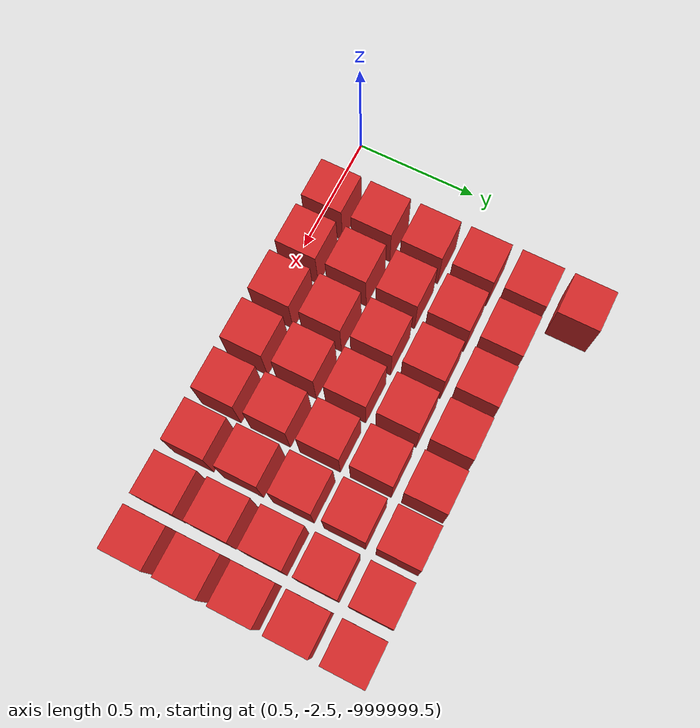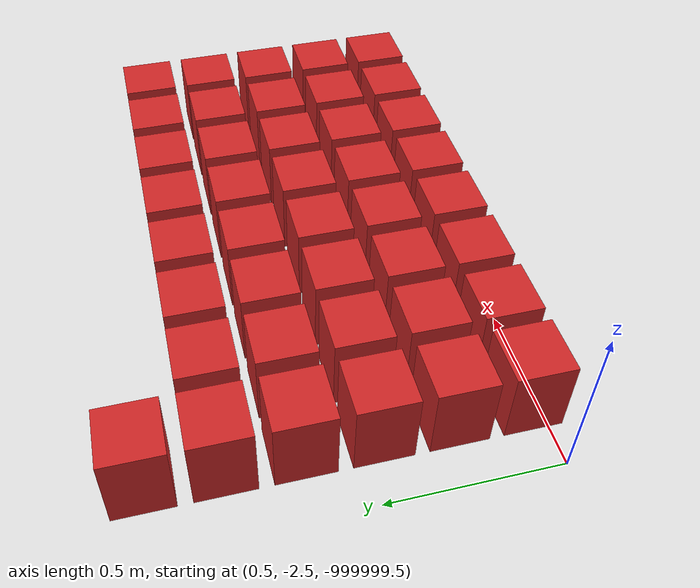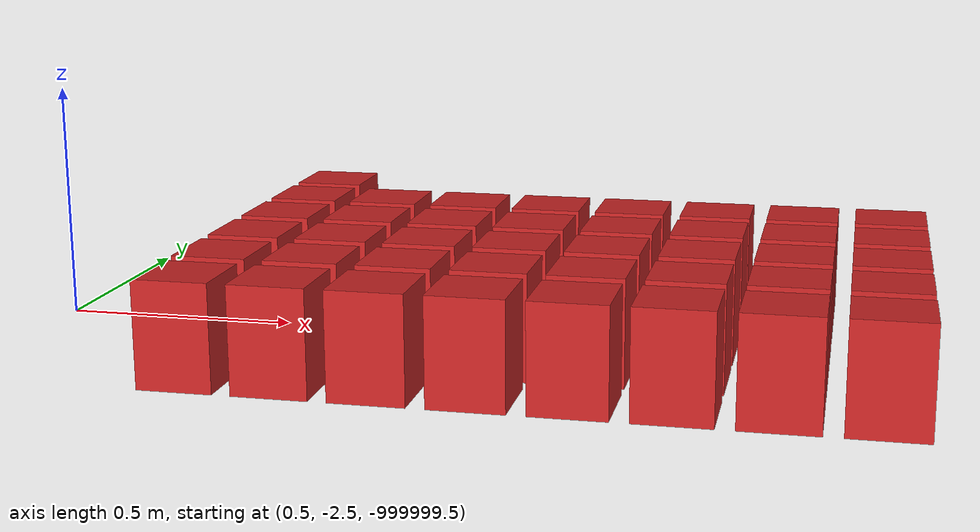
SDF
<sdf version="1.7">
 <world name="default">
  <model name="ground_plane">
   <static>1</static>
   <link name="link">
    <collision name="collision">
     <geometry><plane><normal>0 0 1</normal><size>100 100</size></plane></geometry>
     <surface>
      <contact><collide_bitmask>65535</collide_bitmask></contact>
      <friction><ode><mu>100</mu><mu2>50</mu2></ode></friction>
     </surface>
    </collision>
    <visual name="visual">
     <cast_shadows>0</cast_shadows>
     <geometry><plane><normal>0 0 1</normal><size>100 100</size></plane></geometry>
     <material>
      <script><uri>file://media/materials/scripts/gazebo.material</uri><name>Gazebo/Grey</name></script>
     </material>
    </visual>
   </link>
  </model>
  <model name="wall_15">
   <link name="link">
    <pose>0 0 0.5 0 -0 0</pose>
    <inertial>
     <mass>0.5167</mass>
     <inertia>
      <ixx>0.000861167</ixx>
      <ixy>0</ixy>
      <ixz>0</ixz>
      <iyy>0.000861167</iyy>
      <iyz>0</iyz>
      <izz>0.000861167</izz>
     </inertia>
    </inertial>
    <collision name="collision">
     <geometry><box><size>0.21 0.21 0.25</size></box></geometry>
     <surface>
      <contact>
       <poissons_ratio>0.347</poissons_ratio>
       <elastic_modulus>8.8e+09</elastic_modulus>
       <ode><kp>100000</kp><kd>100</kd><max_vel>100</max_vel><min_depth>0.001</min_depth></ode>
      </contact>
      <friction>
       <torsional>
        <coefficient>1</coefficient>
        <use_patch_radius>0</use_patch_radius>
        <surface_radius>0.01</surface_radius>
       </torsional>
      </friction>
     </surface>
    </collision>
    <visual name="visual">
     <geometry><box><size>0.175 0.175 0.25</size></box></geometry>
     <material>
      <script><uri>file://media/materials/scripts/gazebo.material</uri><name>Gazebo/Red</name></script>
     </material>
    </visual>
   </link>
   <pose>0.76087 -2.5 -1e+06 0 -0 0</pose>
  </model>
  <model name="wall_16">
   <link name="link">
    <pose>0 0 0.5 0 -0 0</pose>
    <inertial>
     <mass>0.5167</mass>
     <inertia>
      <ixx>0.000861167</ixx>
      <ixy>0</ixy>
      <ixz>0</ixz>
      <iyy>0.000861167</iyy>
      <iyz>0</iyz>
      <izz>0.000861167</izz>
     </inertia>
    </inertial>
    <collision name="collision">
     <geometry><box><size>0.21 0.21 0.25</size></box></geometry>
     <surface>
      <contact>
       <poissons_ratio>0.347</poissons_ratio>
       <elastic_modulus>8.8e+09</elastic_modulus>
       <ode><kp>100000</kp><kd>100</kd><max_vel>100</max_vel><min_depth>0.001</min_depth></ode>
      </contact>
      <friction>
       <torsional>
        <coefficient>1</coefficient>
        <use_patch_radius>0</use_patch_radius>
        <surface_radius>0.01</surface_radius>
       </torsional>
      </friction>
     </surface>
    </collision>
    <visual name="visual">
     <geometry><box><size>0.175 0.175 0.25</size></box></geometry>
     <material>
      <script><uri>file://media/materials/scripts/gazebo.material</uri><name>Gazebo/Red</name></script>
     </material>
    </visual>
   </link>
   <pose>0.978261 -2.5 -1e+06 0 -0 0</pose>
  </model>
  <model name="wall_17">
   <link name="link">
    <pose>0 0 0.5 0 -0 0</pose>
    <inertial>
     <mass>0.5167</mass>
     <inertia>
      <ixx>0.000861167</ixx>
      <ixy>0</ixy>
      <ixz>0</ixz>
      <iyy>0.000861167</iyy>
      <iyz>0</iyz>
      <izz>0.000861167</izz>
     </inertia>
    </inertial>
    <collision name="collision">
     <geometry><box><size>0.21 0.21 0.25</size></box></geometry>
     <surface>
      <contact>
       <poissons_ratio>0.347</poissons_ratio>
       <elastic_modulus>8.8e+09</elastic_modulus>
       <ode><kp>100000</kp><kd>100</kd><max_vel>100</max_vel><min_depth>0.001</min_depth></ode>
      </contact>
      <friction>
       <torsional>
        <coefficient>1</coefficient>
        <use_patch_radius>0</use_patch_radius>
        <surface_radius>0.01</surface_radius>
       </torsional>
      </friction>
     </surface>
    </collision>
    <visual name="visual">
     <geometry><box><size>0.175 0.175 0.25</size></box></geometry>
     <material>
      <script><uri>file://media/materials/scripts/gazebo.material</uri><name>Gazebo/Red</name></script>
     </material>
    </visual>
   </link>
   <pose>1.19565 -2.5 -1e+06 0 -0 0</pose>
  </model>
  <model name="wall_18">
   <link name="link">
    <pose>0 0 0.5 0 -0 0</pose>
    <inertial>
     <mass>0.5167</mass>
     <inertia>
      <ixx>0.000861167</ixx>
      <ixy>0</ixy>
      <ixz>0</ixz>
      <iyy>0.000861167</iyy>
      <iyz>0</iyz>
      <izz>0.000861167</izz>
     </inertia>
    </inertial>
    <collision name="collision">
     <geometry><box><size>0.21 0.21 0.25</size></box></geometry>
     <surface>
      <contact>
       <poissons_ratio>0.347</poissons_ratio>
       <elastic_modulus>8.8e+09</elastic_modulus>
       <ode><kp>100000</kp><kd>100</kd><max_vel>100</max_vel><min_depth>0.001</min_depth></ode>
      </contact>
      <friction>
       <torsional>
        <coefficient>1</coefficient>
        <use_patch_radius>0</use_patch_radius>
        <surface_radius>0.01</surface_radius>
       </torsional>
      </friction>
     </surface>
    </collision>
    <visual name="visual">
     <geometry><box><size>0.175 0.175 0.25</size></box></geometry>
     <material>
      <script><uri>file://media/materials/scripts/gazebo.material</uri><name>Gazebo/Red</name></script>
     </material>
    </visual>
   </link>
   <pose>1.41304 -2.5 -1e+06 0 -0 0</pose>
  </model>
  <model name="wall_19">
   <link name="link">
    <pose>0 0 0.5 0 -0 0</pose>
    <inertial>
     <mass>0.5167</mass>
     <inertia>
      <ixx>0.000861167</ixx>
      <ixy>0</ixy>
      <ixz>0</ixz>
      <iyy>0.000861167</iyy>
      <iyz>0</iyz>
      <izz>0.000861167</izz>
     </inertia>
    </inertial>
    <collision name="collision">
     <geometry><box><size>0.21 0.21 0.25</size></box></geometry>
     <surface>
      <contact>
       <poissons_ratio>0.347</poissons_ratio>
       <elastic_modulus>8.8e+09</elastic_modulus>
       <ode><kp>100000</kp><kd>100</kd><max_vel>100</max_vel><min_depth>0.001</min_depth></ode>
      </contact>
      <friction>
       <torsional>
        <coefficient>1</coefficient>
        <use_patch_radius>0</use_patch_radius>
        <surface_radius>0.01</surface_radius>
       </torsional>
      </friction>
     </surface>
    </collision>
    <visual name="visual">
     <geometry><box><size>0.175 0.175 0.25</size></box></geometry>
     <material>
      <script><uri>file://media/materials/scripts/gazebo.material</uri><name>Gazebo/Red</name></script>
     </material>
    </visual>
   </link>
   <pose>1.63043 -2.5 -1e+06 0 -0 0</pose>
  </model>
  <model name="wall_20">
   <link name="link">
    <pose>0 0 0.5 0 -0 0</pose>
    <inertial>
     <mass>0.5167</mass>
     <inertia>
      <ixx>0.000861167</ixx>
      <ixy>0</ixy>
      <ixz>0</ixz>
      <iyy>0.000861167</iyy>
      <iyz>0</iyz>
      <izz>0.000861167</izz>
     </inertia>
    </inertial>
    <collision name="collision">
     <geometry><box><size>0.21 0.21 0.25</size></box></geometry>
     <surface>
      <contact>
       <poissons_ratio>0.347</poissons_ratio>
       <elastic_modulus>8.8e+09</elastic_modulus>
       <ode><kp>100000</kp><kd>100</kd><max_vel>100</max_vel><min_depth>0.001</min_depth></ode>
      </contact>
      <friction>
       <torsional>
        <coefficient>1</coefficient>
        <use_patch_radius>0</use_patch_radius>
        <surface_radius>0.01</surface_radius>
       </torsional>
      </friction>
     </surface>
    </collision>
    <visual name="visual">
     <geometry><box><size>0.175 0.175 0.25</size></box></geometry>
     <material>
      <script><uri>file://media/materials/scripts/gazebo.material</uri><name>Gazebo/Red</name></script>
     </material>
    </visual>
   </link>
   <pose>1.84783 -2.5 -1e+06 0 -0 0</pose>
  </model>
  <model name="wall_21">
   <link name="link">
    <pose>0 0 0.5 0 -0 0</pose>
    <inertial>
     <mass>0.5167</mass>
     <inertia>
      <ixx>0.000861167</ixx>
      <ixy>0</ixy>
      <ixz>0</ixz>
      <iyy>0.000861167</iyy>
      <iyz>0</iyz>
      <izz>0.000861167</izz>
     </inertia>
    </inertial>
    <collision name="collision">
     <geometry><box><size>0.21 0.21 0.25</size></box></geometry>
     <surface>
      <contact>
       <poissons_ratio>0.347</poissons_ratio>
       <elastic_modulus>8.8e+09</elastic_modulus>
       <ode><kp>100000</kp><kd>100</kd><max_vel>100</max_vel><min_depth>0.001</min_depth></ode>
      </contact>
      <friction>
       <torsional>
        <coefficient>1</coefficient>
        <use_patch_radius>0</use_patch_radius>
        <surface_radius>0.01</surface_radius>
       </torsional>
      </friction>
     </surface>
    </collision>
    <visual name="visual">
     <geometry><box><size>0.175 0.175 0.25</size></box></geometry>
     <material>
      <script><uri>file://media/materials/scripts/gazebo.material</uri><name>Gazebo/Red</name></script>
     </material>
    </visual>
   </link>
   <pose>2.06522 -2.5 -1e+06 0 -0 0</pose>
  </model>
  <model name="wall_22">
   <link name="link">
    <pose>0 0 0.5 0 -0 0</pose>
    <inertial>
     <mass>0.5167</mass>
     <inertia>
      <ixx>0.000861167</ixx>
      <ixy>0</ixy>
      <ixz>0</ixz>
      <iyy>0.000861167</iyy>
      <iyz>0</iyz>
      <izz>0.000861167</izz>
     </inertia>
    </inertial>
    <collision name="collision">
     <geometry><box><size>0.21 0.21 0.25</size></box></geometry>
     <surface>
      <contact>
       <poissons_ratio>0.347</poissons_ratio>
       <elastic_modulus>8.8e+09</elastic_modulus>
       <ode><kp>100000</kp><kd>100</kd><max_vel>100</max_vel><min_depth>0.001</min_depth></ode>
      </contact>
      <friction>
       <torsional>
        <coefficient>1</coefficient>
        <use_patch_radius>0</use_patch_radius>
        <surface_radius>0.01</surface_radius>
       </torsional>
      </friction>
     </surface>
    </collision>
    <visual name="visual">
     <geometry><box><size>0.175 0.175 0.25</size></box></geometry>
     <material>
      <script><uri>file://media/materials/scripts/gazebo.material</uri><name>Gazebo/Red</name></script>
     </material>
    </visual>
   </link>
   <pose>2.28261 -2.5 -1e+06 0 -0 0</pose>
  </model>
  <model name="wall_38">
   <link name="link">
    <pose>0 0 0.5 0 -0 0</pose>
    <inertial>
     <mass>0.5167</mass>
     <inertia>
      <ixx>0.000861167</ixx>
      <ixy>0</ixy>
      <ixz>0</ixz>
      <iyy>0.000861167</iyy>
      <iyz>0</iyz>
      <izz>0.000861167</izz>
     </inertia>
    </inertial>
    <collision name="collision">
     <geometry><box><size>0.21 0.21 0.25</size></box></geometry>
     <surface>
      <contact>
       <poissons_ratio>0.347</poissons_ratio>
       <elastic_modulus>8.8e+09</elastic_modulus>
       <ode><kp>100000</kp><kd>100</kd><max_vel>100</max_vel><min_depth>0.001</min_depth></ode>
      </contact>
      <friction>
       <torsional>
        <coefficient>1</coefficient>
        <use_patch_radius>0</use_patch_radius>
        <surface_radius>0.01</surface_radius>
       </torsional>
      </friction>
     </surface>
    </collision>
    <visual name="visual">
     <geometry><box><size>0.175 0.175 0.25</size></box></geometry>
     <material>
      <script><uri>file://media/materials/scripts/gazebo.material</uri><name>Gazebo/Red</name></script>
     </material>
    </visual>
   </link>
   <pose>0.76087 -2.28261 -1e+06 0 -0 0</pose>
  </model>
  <model name="wall_39">
   <link name="link">
    <pose>0 0 0.5 0 -0 0</pose>
    <inertial>
     <mass>0.5167</mass>
     <inertia>
      <ixx>0.000861167</ixx>
      <ixy>0</ixy>
      <ixz>0</ixz>
      <iyy>0.000861167</iyy>
      <iyz>0</iyz>
      <izz>0.000861167</izz>
     </inertia>
    </inertial>
    <collision name="collision">
     <geometry><box><size>0.21 0.21 0.25</size></box></geometry>
     <surface>
      <contact>
       <poissons_ratio>0.347</poissons_ratio>
       <elastic_modulus>8.8e+09</elastic_modulus>
       <ode><kp>100000</kp><kd>100</kd><max_vel>100</max_vel><min_depth>0.001</min_depth></ode>
      </contact>
      <friction>
       <torsional>
        <coefficient>1</coefficient>
        <use_patch_radius>0</use_patch_radius>
        <surface_radius>0.01</surface_radius>
       </torsional>
      </friction>
     </surface>
    </collision>
    <visual name="visual">
     <geometry><box><size>0.175 0.175 0.25</size></box></geometry>
     <material>
      <script><uri>file://media/materials/scripts/gazebo.material</uri><name>Gazebo/Red</name></script>
     </material>
    </visual>
   </link>
   <pose>0.978261 -2.28261 -1e+06 0 -0 0</pose>
  </model>
  <model name="wall_40">
   <link name="link">
    <pose>0 0 0.5 0 -0 0</pose>
    <inertial>
     <mass>0.5167</mass>
     <inertia>
      <ixx>0.000861167</ixx>
      <ixy>0</ixy>
      <ixz>0</ixz>
      <iyy>0.000861167</iyy>
      <iyz>0</iyz>
      <izz>0.000861167</izz>
     </inertia>
    </inertial>
    <collision name="collision">
     <geometry><box><size>0.21 0.21 0.25</size></box></geometry>
     <surface>
      <contact>
       <poissons_ratio>0.347</poissons_ratio>
       <elastic_modulus>8.8e+09</elastic_modulus>
       <ode><kp>100000</kp><kd>100</kd><max_vel>100</max_vel><min_depth>0.001</min_depth></ode>
      </contact>
      <friction>
       <torsional>
        <coefficient>1</coefficient>
        <use_patch_radius>0</use_patch_radius>
        <surface_radius>0.01</surface_radius>
       </torsional>
      </friction>
     </surface>
    </collision>
    <visual name="visual">
     <geometry><box><size>0.175 0.175 0.25</size></box></geometry>
     <material>
      <script><uri>file://media/materials/scripts/gazebo.material</uri><name>Gazebo/Red</name></script>
     </material>
    </visual>
   </link>
   <pose>1.19565 -2.28261 -1e+06 0 -0 0</pose>
  </model>
  <model name="wall_41">
   <link name="link">
    <pose>0 0 0.5 0 -0 0</pose>
    <inertial>
     <mass>0.5167</mass>
     <inertia>
      <ixx>0.000861167</ixx>
      <ixy>0</ixy>
      <ixz>0</ixz>
      <iyy>0.000861167</iyy>
      <iyz>0</iyz>
      <izz>0.000861167</izz>
     </inertia>
    </inertial>
    <collision name="collision">
     <geometry><box><size>0.21 0.21 0.25</size></box></geometry>
     <surface>
      <contact>
       <poissons_ratio>0.347</poissons_ratio>
       <elastic_modulus>8.8e+09</elastic_modulus>
       <ode><kp>100000</kp><kd>100</kd><max_vel>100</max_vel><min_depth>0.001</min_depth></ode>
      </contact>
      <friction>
       <torsional>
        <coefficient>1</coefficient>
        <use_patch_radius>0</use_patch_radius>
        <surface_radius>0.01</surface_radius>
       </torsional>
      </friction>
     </surface>
    </collision>
    <visual name="visual">
     <geometry><box><size>0.175 0.175 0.25</size></box></geometry>
     <material>
      <script><uri>file://media/materials/scripts/gazebo.material</uri><name>Gazebo/Red</name></script>
     </material>
    </visual>
   </link>
   <pose>1.41304 -2.28261 -1e+06 0 -0 0</pose>
  </model>
  <model name="wall_42">
   <link name="link">
    <pose>0 0 0.5 0 -0 0</pose>
    <inertial>
     <mass>0.5167</mass>
     <inertia>
      <ixx>0.000861167</ixx>
      <ixy>0</ixy>
      <ixz>0</ixz>
      <iyy>0.000861167</iyy>
      <iyz>0</iyz>
      <izz>0.000861167</izz>
     </inertia>
    </inertial>
    <collision name="collision">
     <geometry><box><size>0.21 0.21 0.25</size></box></geometry>
     <surface>
      <contact>
       <poissons_ratio>0.347</poissons_ratio>
       <elastic_modulus>8.8e+09</elastic_modulus>
       <ode><kp>100000</kp><kd>100</kd><max_vel>100</max_vel><min_depth>0.001</min_depth></ode>
      </contact>
      <friction>
       <torsional>
        <coefficient>1</coefficient>
        <use_patch_radius>0</use_patch_radius>
        <surface_radius>0.01</surface_radius>
       </torsional>
      </friction>
     </surface>
    </collision>
    <visual name="visual">
     <geometry><box><size>0.175 0.175 0.25</size></box></geometry>
     <material>
      <script><uri>file://media/materials/scripts/gazebo.material</uri><name>Gazebo/Red</name></script>
     </material>
    </visual>
   </link>
   <pose>1.63043 -2.28261 -1e+06 0 -0 0</pose>
  </model>
  <model name="wall_43">
   <link name="link">
    <pose>0 0 0.5 0 -0 0</pose>
    <inertial>
     <mass>0.5167</mass>
     <inertia>
      <ixx>0.000861167</ixx>
      <ixy>0</ixy>
      <ixz>0</ixz>
      <iyy>0.000861167</iyy>
      <iyz>0</iyz>
      <izz>0.000861167</izz>
     </inertia>
    </inertial>
    <collision name="collision">
     <geometry><box><size>0.21 0.21 0.25</size></box></geometry>
     <surface>
      <contact>
       <poissons_ratio>0.347</poissons_ratio>
       <elastic_modulus>8.8e+09</elastic_modulus>
       <ode><kp>100000</kp><kd>100</kd><max_vel>100</max_vel><min_depth>0.001</min_depth></ode>
      </contact>
      <friction>
       <torsional>
        <coefficient>1</coefficient>
        <use_patch_radius>0</use_patch_radius>
        <surface_radius>0.01</surface_radius>
       </torsional>
      </friction>
     </surface>
    </collision>
    <visual name="visual">
     <geometry><box><size>0.175 0.175 0.25</size></box></geometry>
     <material>
      <script><uri>file://media/materials/scripts/gazebo.material</uri><name>Gazebo/Red</name></script>
     </material>
    </visual>
   </link>
   <pose>1.84783 -2.28261 -1e+06 0 -0 0</pose>
  </model>
  <model name="wall_44">
   <link name="link">
    <pose>0 0 0.5 0 -0 0</pose>
    <inertial>
     <mass>0.5167</mass>
     <inertia>
      <ixx>0.000861167</ixx>
      <ixy>0</ixy>
      <ixz>0</ixz>
      <iyy>0.000861167</iyy>
      <iyz>0</iyz>
      <izz>0.000861167</izz>
     </inertia>
    </inertial>
    <collision name="collision">
     <geometry><box><size>0.21 0.21 0.25</size></box></geometry>
     <surface>
      <contact>
       <poissons_ratio>0.347</poissons_ratio>
       <elastic_modulus>8.8e+09</elastic_modulus>
       <ode><kp>100000</kp><kd>100</kd><max_vel>100</max_vel><min_depth>0.001</min_depth></ode>
      </contact>
      <friction>
       <torsional>
        <coefficient>1</coefficient>
        <use_patch_radius>0</use_patch_radius>
        <surface_radius>0.01</surface_radius>
       </torsional>
      </friction>
     </surface>
    </collision>
    <visual name="visual">
     <geometry><box><size>0.175 0.175 0.25</size></box></geometry>
     <material>
      <script><uri>file://media/materials/scripts/gazebo.material</uri><name>Gazebo/Red</name></script>
     </material>
    </visual>
   </link>
   <pose>2.06522 -2.28261 -1e+06 0 -0 0</pose>
  </model>
  <model name="wall_45">
   <link name="link">
    <pose>0 0 0.5 0 -0 0</pose>
    <inertial>
     <mass>0.5167</mass>
     <inertia>
      <ixx>0.000861167</ixx>
      <ixy>0</ixy>
      <ixz>0</ixz>
      <iyy>0.000861167</iyy>
      <iyz>0</iyz>
      <izz>0.000861167</izz>
     </inertia>
    </inertial>
    <collision name="collision">
     <geometry><box><size>0.21 0.21 0.25</size></box></geometry>
     <surface>
      <contact>
       <poissons_ratio>0.347</poissons_ratio>
       <elastic_modulus>8.8e+09</elastic_modulus>
       <ode><kp>100000</kp><kd>100</kd><max_vel>100</max_vel><min_depth>0.001</min_depth></ode>
      </contact>
      <friction>
       <torsional>
        <coefficient>1</coefficient>
        <use_patch_radius>0</use_patch_radius>
        <surface_radius>0.01</surface_radius>
       </torsional>
      </friction>
     </surface>
    </collision>
    <visual name="visual">
     <geometry><box><size>0.175 0.175 0.25</size></box></geometry>
     <material>
      <script><uri>file://media/materials/scripts/gazebo.material</uri><name>Gazebo/Red</name></script>
     </material>
    </visual>
   </link>
   <pose>2.28261 -2.28261 -1e+06 0 -0 0</pose>
  </model>
  <model name="wall_61">
   <link name="link">
    <pose>0 0 0.5 0 -0 0</pose>
    <inertial>
     <mass>0.5167</mass>
     <inertia>
      <ixx>0.000861167</ixx>
      <ixy>0</ixy>
      <ixz>0</ixz>
      <iyy>0.000861167</iyy>
      <iyz>0</iyz>
      <izz>0.000861167</izz>
     </inertia>
    </inertial>
    <collision name="collision">
     <geometry><box><size>0.21 0.21 0.25</size></box></geometry>
     <surface>
      <contact>
       <poissons_ratio>0.347</poissons_ratio>
       <elastic_modulus>8.8e+09</elastic_modulus>
       <ode><kp>100000</kp><kd>100</kd><max_vel>100</max_vel><min_depth>0.001</min_depth></ode>
      </contact>
      <friction>
       <torsional>
        <coefficient>1</coefficient>
        <use_patch_radius>0</use_patch_radius>
        <surface_radius>0.01</surface_radius>
       </torsional>
      </friction>
     </surface>
    </collision>
    <visual name="visual">
     <geometry><box><size>0.175 0.175 0.25</size></box></geometry>
     <material>
      <script><uri>file://media/materials/scripts/gazebo.material</uri><name>Gazebo/Red</name></script>
     </material>
    </visual>
   </link>
   <pose>0.76087 -2.06522 -1e+06 0 -0 0</pose>
  </model>
  <model name="wall_62">
   <link name="link">
    <pose>0 0 0.5 0 -0 0</pose>
    <inertial>
     <mass>0.5167</mass>
     <inertia>
      <ixx>0.000861167</ixx>
      <ixy>0</ixy>
      <ixz>0</ixz>
      <iyy>0.000861167</iyy>
      <iyz>0</iyz>
      <izz>0.000861167</izz>
     </inertia>
    </inertial>
    <collision name="collision">
     <geometry><box><size>0.21 0.21 0.25</size></box></geometry>
     <surface>
      <contact>
       <poissons_ratio>0.347</poissons_ratio>
       <elastic_modulus>8.8e+09</elastic_modulus>
       <ode><kp>100000</kp><kd>100</kd><max_vel>100</max_vel><min_depth>0.001</min_depth></ode>
      </contact>
      <friction>
       <torsional>
        <coefficient>1</coefficient>
        <use_patch_radius>0</use_patch_radius>
        <surface_radius>0.01</surface_radius>
       </torsional>
      </friction>
     </surface>
    </collision>
    <visual name="visual">
     <geometry><box><size>0.175 0.175 0.25</size></box></geometry>
     <material>
      <script><uri>file://media/materials/scripts/gazebo.material</uri><name>Gazebo/Red</name></script>
     </material>
    </visual>
   </link>
   <pose>0.978261 -2.06522 -1e+06 0 -0 0</pose>
  </model>
  <model name="wall_63">
   <link name="link">
    <pose>0 0 0.5 0 -0 0</pose>
    <inertial>
     <mass>0.5167</mass>
     <inertia>
      <ixx>0.000861167</ixx>
      <ixy>0</ixy>
      <ixz>0</ixz>
      <iyy>0.000861167</iyy>
      <iyz>0</iyz>
      <izz>0.000861167</izz>
     </inertia>
    </inertial>
    <collision name="collision">
     <geometry><box><size>0.21 0.21 0.25</size></box></geometry>
     <surface>
      <contact>
       <poissons_ratio>0.347</poissons_ratio>
       <elastic_modulus>8.8e+09</elastic_modulus>
       <ode><kp>100000</kp><kd>100</kd><max_vel>100</max_vel><min_depth>0.001</min_depth></ode>
      </contact>
      <friction>
       <torsional>
        <coefficient>1</coefficient>
        <use_patch_radius>0</use_patch_radius>
        <surface_radius>0.01</surface_radius>
       </torsional>
      </friction>
     </surface>
    </collision>
    <visual name="visual">
     <geometry><box><size>0.175 0.175 0.25</size></box></geometry>
     <material>
      <script><uri>file://media/materials/scripts/gazebo.material</uri><name>Gazebo/Red</name></script>
     </material>
    </visual>
   </link>
   <pose>1.19565 -2.06522 -1e+06 0 -0 0</pose>
  </model>
  <model name="wall_64">
   <link name="link">
    <pose>0 0 0.5 0 -0 0</pose>
    <inertial>
     <mass>0.5167</mass>
     <inertia>
      <ixx>0.000861167</ixx>
      <ixy>0</ixy>
      <ixz>0</ixz>
      <iyy>0.000861167</iyy>
      <iyz>0</iyz>
      <izz>0.000861167</izz>
     </inertia>
    </inertial>
    <collision name="collision">
     <geometry><box><size>0.21 0.21 0.25</size></box></geometry>
     <surface>
      <contact>
       <poissons_ratio>0.347</poissons_ratio>
       <elastic_modulus>8.8e+09</elastic_modulus>
       <ode><kp>100000</kp><kd>100</kd><max_vel>100</max_vel><min_depth>0.001</min_depth></ode>
      </contact>
      <friction>
       <torsional>
        <coefficient>1</coefficient>
        <use_patch_radius>0</use_patch_radius>
        <surface_radius>0.01</surface_radius>
       </torsional>
      </friction>
     </surface>
    </collision>
    <visual name="visual">
     <geometry><box><size>0.175 0.175 0.25</size></box></geometry>
     <material>
      <script><uri>file://media/materials/scripts/gazebo.material</uri><name>Gazebo/Red</name></script>
     </material>
    </visual>
   </link>
   <pose>1.41304 -2.06522 -1e+06 0 -0 0</pose>
  </model>
  <model name="wall_65">
   <link name="link">
    <pose>0 0 0.5 0 -0 0</pose>
    <inertial>
     <mass>0.5167</mass>
     <inertia>
      <ixx>0.000861167</ixx>
      <ixy>0</ixy>
      <ixz>0</ixz>
      <iyy>0.000861167</iyy>
      <iyz>0</iyz>
      <izz>0.000861167</izz>
     </inertia>
    </inertial>
    <collision name="collision">
     <geometry><box><size>0.21 0.21 0.25</size></box></geometry>
     <surface>
      <contact>
       <poissons_ratio>0.347</poissons_ratio>
       <elastic_modulus>8.8e+09</elastic_modulus>
       <ode><kp>100000</kp><kd>100</kd><max_vel>100</max_vel><min_depth>0.001</min_depth></ode>
      </contact>
      <friction>
       <torsional>
        <coefficient>1</coefficient>
        <use_patch_radius>0</use_patch_radius>
        <surface_radius>0.01</surface_radius>
       </torsional>
      </friction>
     </surface>
    </collision>
    <visual name="visual">
     <geometry><box><size>0.175 0.175 0.25</size></box></geometry>
     <material>
      <script><uri>file://media/materials/scripts/gazebo.material</uri><name>Gazebo/Red</name></script>
     </material>
    </visual>
   </link>
   <pose>1.63043 -2.06522 -1e+06 0 -0 0</pose>
  </model>
  <model name="wall_66">
   <link name="link">
    <pose>0 0 0.5 0 -0 0</pose>
    <inertial>
     <mass>0.5167</mass>
     <inertia>
      <ixx>0.000861167</ixx>
      <ixy>0</ixy>
      <ixz>0</ixz>
      <iyy>0.000861167</iyy>
      <iyz>0</iyz>
      <izz>0.000861167</izz>
     </inertia>
    </inertial>
    <collision name="collision">
     <geometry><box><size>0.21 0.21 0.25</size></box></geometry>
     <surface>
      <contact>
       <poissons_ratio>0.347</poissons_ratio>
       <elastic_modulus>8.8e+09</elastic_modulus>
       <ode><kp>100000</kp><kd>100</kd><max_vel>100</max_vel><min_depth>0.001</min_depth></ode>
      </contact>
      <friction>
       <torsional>
        <coefficient>1</coefficient>
        <use_patch_radius>0</use_patch_radius>
        <surface_radius>0.01</surface_radius>
       </torsional>
      </friction>
     </surface>
    </collision>
    <visual name="visual">
     <geometry><box><size>0.175 0.175 0.25</size></box></geometry>
     <material>
      <script><uri>file://media/materials/scripts/gazebo.material</uri><name>Gazebo/Red</name></script>
     </material>
    </visual>
   </link>
   <pose>1.84783 -2.06522 -1e+06 0 -0 0</pose>
  </model>
  <model name="wall_67">
   <link name="link">
    <pose>0 0 0.5 0 -0 0</pose>
    <inertial>
     <mass>0.5167</mass>
     <inertia>
      <ixx>0.000861167</ixx>
      <ixy>0</ixy>
      <ixz>0</ixz>
      <iyy>0.000861167</iyy>
      <iyz>0</iyz>
      <izz>0.000861167</izz>
     </inertia>
    </inertial>
    <collision name="collision">
     <geometry><box><size>0.21 0.21 0.25</size></box></geometry>
     <surface>
      <contact>
       <poissons_ratio>0.347</poissons_ratio>
       <elastic_modulus>8.8e+09</elastic_modulus>
       <ode><kp>100000</kp><kd>100</kd><max_vel>100</max_vel><min_depth>0.001</min_depth></ode>
      </contact>
      <friction>
       <torsional>
        <coefficient>1</coefficient>
        <use_patch_radius>0</use_patch_radius>
        <surface_radius>0.01</surface_radius>
       </torsional>
      </friction>
     </surface>
    </collision>
    <visual name="visual">
     <geometry><box><size>0.175 0.175 0.25</size></box></geometry>
     <material>
      <script><uri>file://media/materials/scripts/gazebo.material</uri><name>Gazebo/Red</name></script>
     </material>
    </visual>
   </link>
   <pose>2.06522 -2.06522 -1e+06 0 -0 0</pose>
  </model>
  <model name="wall_68">
   <link name="link">
    <pose>0 0 0.5 0 -0 0</pose>
    <inertial>
     <mass>0.5167</mass>
     <inertia>
      <ixx>0.000861167</ixx>
      <ixy>0</ixy>
      <ixz>0</ixz>
      <iyy>0.000861167</iyy>
      <iyz>0</iyz>
      <izz>0.000861167</izz>
     </inertia>
    </inertial>
    <collision name="collision">
     <geometry><box><size>0.21 0.21 0.25</size></box></geometry>
     <surface>
      <contact>
       <poissons_ratio>0.347</poissons_ratio>
       <elastic_modulus>8.8e+09</elastic_modulus>
       <ode><kp>100000</kp><kd>100</kd><max_vel>100</max_vel><min_depth>0.001</min_depth></ode>
      </contact>
      <friction>
       <torsional>
        <coefficient>1</coefficient>
        <use_patch_radius>0</use_patch_radius>
        <surface_radius>0.01</surface_radius>
       </torsional>
      </friction>
     </surface>
    </collision>
    <visual name="visual">
     <geometry><box><size>0.175 0.175 0.25</size></box></geometry>
     <material>
      <script><uri>file://media/materials/scripts/gazebo.material</uri><name>Gazebo/Red</name></script>
     </material>
    </visual>
   </link>
   <pose>2.28261 -2.06522 -1e+06 0 -0 0</pose>
  </model>
  <model name="wall_84">
   <link name="link">
    <pose>0 0 0.5 0 -0 0</pose>
    <inertial>
     <mass>0.5167</mass>
     <inertia>
      <ixx>0.000861167</ixx>
      <ixy>0</ixy>
      <ixz>0</ixz>
      <iyy>0.000861167</iyy>
      <iyz>0</iyz>
      <izz>0.000861167</izz>
     </inertia>
    </inertial>
    <collision name="collision">
     <geometry><box><size>0.21 0.21 0.25</size></box></geometry>
     <surface>
      <contact>
       <poissons_ratio>0.347</poissons_ratio>
       <elastic_modulus>8.8e+09</elastic_modulus>
       <ode><kp>100000</kp><kd>100</kd><max_vel>100</max_vel><min_depth>0.001</min_depth></ode>
      </contact>
      <friction>
       <torsional>
        <coefficient>1</coefficient>
        <use_patch_radius>0</use_patch_radius>
        <surface_radius>0.01</surface_radius>
       </torsional>
      </friction>
     </surface>
    </collision>
    <visual name="visual">
     <geometry><box><size>0.175 0.175 0.25</size></box></geometry>
     <material>
      <script><uri>file://media/materials/scripts/gazebo.material</uri><name>Gazebo/Red</name></script>
     </material>
    </visual>
   </link>
   <pose>0.76087 -1.84783 -1e+06 0 -0 0</pose>
  </model>
  <model name="wall_85">
   <link name="link">
    <pose>0 0 0.5 0 -0 0</pose>
    <inertial>
     <mass>0.5167</mass>
     <inertia>
      <ixx>0.000861167</ixx>
      <ixy>0</ixy>
      <ixz>0</ixz>
      <iyy>0.000861167</iyy>
      <iyz>0</iyz>
      <izz>0.000861167</izz>
     </inertia>
    </inertial>
    <collision name="collision">
     <geometry><box><size>0.21 0.21 0.25</size></box></geometry>
     <surface>
      <contact>
       <poissons_ratio>0.347</poissons_ratio>
       <elastic_modulus>8.8e+09</elastic_modulus>
       <ode><kp>100000</kp><kd>100</kd><max_vel>100</max_vel><min_depth>0.001</min_depth></ode>
      </contact>
      <friction>
       <torsional>
        <coefficient>1</coefficient>
        <use_patch_radius>0</use_patch_radius>
        <surface_radius>0.01</surface_radius>
       </torsional>
      </friction>
     </surface>
    </collision>
    <visual name="visual">
     <geometry><box><size>0.175 0.175 0.25</size></box></geometry>
     <material>
      <script><uri>file://media/materials/scripts/gazebo.material</uri><name>Gazebo/Red</name></script>
     </material>
    </visual>
   </link>
   <pose>0.978261 -1.84783 -1e+06 0 -0 0</pose>
  </model>
  <model name="wall_86">
   <link name="link">
    <pose>0 0 0.5 0 -0 0</pose>
    <inertial>
     <mass>0.5167</mass>
     <inertia>
      <ixx>0.000861167</ixx>
      <ixy>0</ixy>
      <ixz>0</ixz>
      <iyy>0.000861167</iyy>
      <iyz>0</iyz>
      <izz>0.000861167</izz>
     </inertia>
    </inertial>
    <collision name="collision">
     <geometry><box><size>0.21 0.21 0.25</size></box></geometry>
     <surface>
      <contact>
       <poissons_ratio>0.347</poissons_ratio>
       <elastic_modulus>8.8e+09</elastic_modulus>
       <ode><kp>100000</kp><kd>100</kd><max_vel>100</max_vel><min_depth>0.001</min_depth></ode>
      </contact>
      <friction>
       <torsional>
        <coefficient>1</coefficient>
        <use_patch_radius>0</use_patch_radius>
        <surface_radius>0.01</surface_radius>
       </torsional>
      </friction>
     </surface>
    </collision>
    <visual name="visual">
     <geometry><box><size>0.175 0.175 0.25</size></box></geometry>
     <material>
      <script><uri>file://media/materials/scripts/gazebo.material</uri><name>Gazebo/Red</name></script>
     </material>
    </visual>
   </link>
   <pose>1.19565 -1.84783 -1e+06 0 -0 0</pose>
  </model>
  <model name="wall_87">
   <link name="link">
    <pose>0 0 0.5 0 -0 0</pose>
    <inertial>
     <mass>0.5167</mass>
     <inertia>
      <ixx>0.000861167</ixx>
      <ixy>0</ixy>
      <ixz>0</ixz>
      <iyy>0.000861167</iyy>
      <iyz>0</iyz>
      <izz>0.000861167</izz>
     </inertia>
    </inertial>
    <collision name="collision">
     <geometry><box><size>0.21 0.21 0.25</size></box></geometry>
     <surface>
      <contact>
       <poissons_ratio>0.347</poissons_ratio>
       <elastic_modulus>8.8e+09</elastic_modulus>
       <ode><kp>100000</kp><kd>100</kd><max_vel>100</max_vel><min_depth>0.001</min_depth></ode>
      </contact>
      <friction>
       <torsional>
        <coefficient>1</coefficient>
        <use_patch_radius>0</use_patch_radius>
        <surface_radius>0.01</surface_radius>
       </torsional>
      </friction>
     </surface>
    </collision>
    <visual name="visual">
     <geometry><box><size>0.175 0.175 0.25</size></box></geometry>
     <material>
      <script><uri>file://media/materials/scripts/gazebo.material</uri><name>Gazebo/Red</name></script>
     </material>
    </visual>
   </link>
   <pose>1.41304 -1.84783 -1e+06 0 -0 0</pose>
  </model>
  <model name="wall_88">
   <link name="link">
    <pose>0 0 0.5 0 -0 0</pose>
    <inertial>
     <mass>0.5167</mass>
     <inertia>
      <ixx>0.000861167</ixx>
      <ixy>0</ixy>
      <ixz>0</ixz>
      <iyy>0.000861167</iyy>
      <iyz>0</iyz>
      <izz>0.000861167</izz>
     </inertia>
    </inertial>
    <collision name="collision">
     <geometry><box><size>0.21 0.21 0.25</size></box></geometry>
     <surface>
      <contact>
       <poissons_ratio>0.347</poissons_ratio>
       <elastic_modulus>8.8e+09</elastic_modulus>
       <ode><kp>100000</kp><kd>100</kd><max_vel>100</max_vel><min_depth>0.001</min_depth></ode>
      </contact>
      <friction>
       <torsional>
        <coefficient>1</coefficient>
        <use_patch_radius>0</use_patch_radius>
        <surface_radius>0.01</surface_radius>
       </torsional>
      </friction>
     </surface>
    </collision>
    <visual name="visual">
     <geometry><box><size>0.175 0.175 0.25</size></box></geometry>
     <material>
      <script><uri>file://media/materials/scripts/gazebo.material</uri><name>Gazebo/Red</name></script>
     </material>
    </visual>
   </link>
   <pose>1.63043 -1.84783 -1e+06 0 -0 0</pose>
  </model>
  <model name="wall_89">
   <link name="link">
    <pose>0 0 0.5 0 -0 0</pose>
    <inertial>
     <mass>0.5167</mass>
     <inertia>
      <ixx>0.000861167</ixx>
      <ixy>0</ixy>
      <ixz>0</ixz>
      <iyy>0.000861167</iyy>
      <iyz>0</iyz>
      <izz>0.000861167</izz>
     </inertia>
    </inertial>
    <collision name="collision">
     <geometry><box><size>0.21 0.21 0.25</size></box></geometry>
     <surface>
      <contact>
       <poissons_ratio>0.347</poissons_ratio>
       <elastic_modulus>8.8e+09</elastic_modulus>
       <ode><kp>100000</kp><kd>100</kd><max_vel>100</max_vel><min_depth>0.001</min_depth></ode>
      </contact>
      <friction>
       <torsional>
        <coefficient>1</coefficient>
        <use_patch_radius>0</use_patch_radius>
        <surface_radius>0.01</surface_radius>
       </torsional>
      </friction>
     </surface>
    </collision>
    <visual name="visual">
     <geometry><box><size>0.175 0.175 0.25</size></box></geometry>
     <material>
      <script><uri>file://media/materials/scripts/gazebo.material</uri><name>Gazebo/Red</name></script>
     </material>
    </visual>
   </link>
   <pose>1.84783 -1.84783 -1e+06 0 -0 0</pose>
  </model>
  <model name="wall_90">
   <link name="link">
    <pose>0 0 0.5 0 -0 0</pose>
    <inertial>
     <mass>0.5167</mass>
     <inertia>
      <ixx>0.000861167</ixx>
      <ixy>0</ixy>
      <ixz>0</ixz>
      <iyy>0.000861167</iyy>
      <iyz>0</iyz>
      <izz>0.000861167</izz>
     </inertia>
    </inertial>
    <collision name="collision">
     <geometry><box><size>0.21 0.21 0.25</size></box></geometry>
     <surface>
      <contact>
       <poissons_ratio>0.347</poissons_ratio>
       <elastic_modulus>8.8e+09</elastic_modulus>
       <ode><kp>100000</kp><kd>100</kd><max_vel>100</max_vel><min_depth>0.001</min_depth></ode>
      </contact>
      <friction>
       <torsional>
        <coefficient>1</coefficient>
        <use_patch_radius>0</use_patch_radius>
        <surface_radius>0.01</surface_radius>
       </torsional>
      </friction>
     </surface>
    </collision>
    <visual name="visual">
     <geometry><box><size>0.175 0.175 0.25</size></box></geometry>
     <material>
      <script><uri>file://media/materials/scripts/gazebo.material</uri><name>Gazebo/Red</name></script>
     </material>
    </visual>
   </link>
   <pose>2.06522 -1.84783 -1e+06 0 -0 0</pose>
  </model>
  <model name="wall_91">
   <link name="link">
    <pose>0 0 0.5 0 -0 0</pose>
    <inertial>
     <mass>0.5167</mass>
     <inertia>
      <ixx>0.000861167</ixx>
      <ixy>0</ixy>
      <ixz>0</ixz>
      <iyy>0.000861167</iyy>
      <iyz>0</iyz>
      <izz>0.000861167</izz>
     </inertia>
    </inertial>
    <collision name="collision">
     <geometry><box><size>0.21 0.21 0.25</size></box></geometry>
     <surface>
      <contact>
       <poissons_ratio>0.347</poissons_ratio>
       <elastic_modulus>8.8e+09</elastic_modulus>
       <ode><kp>100000</kp><kd>100</kd><max_vel>100</max_vel><min_depth>0.001</min_depth></ode>
      </contact>
      <friction>
       <torsional>
        <coefficient>1</coefficient>
        <use_patch_radius>0</use_patch_radius>
        <surface_radius>0.01</surface_radius>
       </torsional>
      </friction>
     </surface>
    </collision>
    <visual name="visual">
     <geometry><box><size>0.175 0.175 0.25</size></box></geometry>
     <material>
      <script><uri>file://media/materials/scripts/gazebo.material</uri><name>Gazebo/Red</name></script>
     </material>
    </visual>
   </link>
   <pose>2.28261 -1.84783 -1e+06 0 -0 0</pose>
  </model>
  <model name="wall_107">
   <link name="link">
    <pose>0 0 0.5 0 -0 0</pose>
    <inertial>
     <mass>0.5167</mass>
     <inertia>
      <ixx>0.000861167</ixx>
      <ixy>0</ixy>
      <ixz>0</ixz>
      <iyy>0.000861167</iyy>
      <iyz>0</iyz>
      <izz>0.000861167</izz>
     </inertia>
    </inertial>
    <collision name="collision">
     <geometry><box><size>0.21 0.21 0.25</size></box></geometry>
     <surface>
      <contact>
       <poissons_ratio>0.347</poissons_ratio>
       <elastic_modulus>8.8e+09</elastic_modulus>
       <ode><kp>100000</kp><kd>100</kd><max_vel>100</max_vel><min_depth>0.001</min_depth></ode>
      </contact>
      <friction>
       <torsional>
        <coefficient>1</coefficient>
        <use_patch_radius>0</use_patch_radius>
        <surface_radius>0.01</surface_radius>
       </torsional>
      </friction>
     </surface>
    </collision>
    <visual name="visual">
     <geometry><box><size>0.175 0.175 0.25</size></box></geometry>
     <material>
      <script><uri>file://media/materials/scripts/gazebo.material</uri><name>Gazebo/Red</name></script>
     </material>
    </visual>
   </link>
   <pose>0.76087 -1.63043 -1e+06 0 -0 0</pose>
  </model>
  <model name="wall_108">
   <link name="link">
    <pose>0 0 0.5 0 -0 0</pose>
    <inertial>
     <mass>0.5167</mass>
     <inertia>
      <ixx>0.000861167</ixx>
      <ixy>0</ixy>
      <ixz>0</ixz>
      <iyy>0.000861167</iyy>
      <iyz>0</iyz>
      <izz>0.000861167</izz>
     </inertia>
    </inertial>
    <collision name="collision">
     <geometry><box><size>0.21 0.21 0.25</size></box></geometry>
     <surface>
      <contact>
       <poissons_ratio>0.347</poissons_ratio>
       <elastic_modulus>8.8e+09</elastic_modulus>
       <ode><kp>100000</kp><kd>100</kd><max_vel>100</max_vel><min_depth>0.001</min_depth></ode>
      </contact>
      <friction>
       <torsional>
        <coefficient>1</coefficient>
        <use_patch_radius>0</use_patch_radius>
        <surface_radius>0.01</surface_radius>
       </torsional>
      </friction>
     </surface>
    </collision>
    <visual name="visual">
     <geometry><box><size>0.175 0.175 0.25</size></box></geometry>
     <material>
      <script><uri>file://media/materials/scripts/gazebo.material</uri><name>Gazebo/Red</name></script>
     </material>
    </visual>
   </link>
   <pose>0.978261 -1.63043 -1e+06 0 -0 0</pose>
  </model>
  <model name="wall_109">
   <link name="link">
    <pose>0 0 0.5 0 -0 0</pose>
    <inertial>
     <mass>0.5167</mass>
     <inertia>
      <ixx>0.000861167</ixx>
      <ixy>0</ixy>
      <ixz>0</ixz>
      <iyy>0.000861167</iyy>
      <iyz>0</iyz>
      <izz>0.000861167</izz>
     </inertia>
    </inertial>
    <collision name="collision">
     <geometry><box><size>0.21 0.21 0.25</size></box></geometry>
     <surface>
      <contact>
       <poissons_ratio>0.347</poissons_ratio>
       <elastic_modulus>8.8e+09</elastic_modulus>
       <ode><kp>100000</kp><kd>100</kd><max_vel>100</max_vel><min_depth>0.001</min_depth></ode>
      </contact>
      <friction>
       <torsional>
        <coefficient>1</coefficient>
        <use_patch_radius>0</use_patch_radius>
        <surface_radius>0.01</surface_radius>
       </torsional>
      </friction>
     </surface>
    </collision>
    <visual name="visual">
     <geometry><box><size>0.175 0.175 0.25</size></box></geometry>
     <material>
      <script><uri>file://media/materials/scripts/gazebo.material</uri><name>Gazebo/Red</name></script>
     </material>
    </visual>
   </link>
   <pose>1.19565 -1.63043 -1e+06 0 -0 0</pose>
  </model>
  <model name="wall_110">
   <link name="link">
    <pose>0 0 0.5 0 -0 0</pose>
    <inertial>
     <mass>0.5167</mass>
     <inertia>
      <ixx>0.000861167</ixx>
      <ixy>0</ixy>
      <ixz>0</ixz>
      <iyy>0.000861167</iyy>
      <iyz>0</iyz>
      <izz>0.000861167</izz>
     </inertia>
    </inertial>
    <collision name="collision">
     <geometry><box><size>0.21 0.21 0.25</size></box></geometry>
     <surface>
      <contact>
       <poissons_ratio>0.347</poissons_ratio>
       <elastic_modulus>8.8e+09</elastic_modulus>
       <ode><kp>100000</kp><kd>100</kd><max_vel>100</max_vel><min_depth>0.001</min_depth></ode>
      </contact>
      <friction>
       <torsional>
        <coefficient>1</coefficient>
        <use_patch_radius>0</use_patch_radius>
        <surface_radius>0.01</surface_radius>
       </torsional>
      </friction>
     </surface>
    </collision>
    <visual name="visual">
     <geometry><box><size>0.175 0.175 0.25</size></box></geometry>
     <material>
      <script><uri>file://media/materials/scripts/gazebo.material</uri><name>Gazebo/Red</name></script>
     </material>
    </visual>
   </link>
   <pose>1.41304 -1.63043 -1e+06 0 -0 0</pose>
  </model>
  <model name="wall_111">
   <link name="link">
    <pose>0 0 0.5 0 -0 0</pose>
    <inertial>
     <mass>0.5167</mass>
     <inertia>
      <ixx>0.000861167</ixx>
      <ixy>0</ixy>
      <ixz>0</ixz>
      <iyy>0.000861167</iyy>
      <iyz>0</iyz>
      <izz>0.000861167</izz>
     </inertia>
    </inertial>
    <collision name="collision">
     <geometry><box><size>0.21 0.21 0.25</size></box></geometry>
     <surface>
      <contact>
       <poissons_ratio>0.347</poissons_ratio>
       <elastic_modulus>8.8e+09</elastic_modulus>
       <ode><kp>100000</kp><kd>100</kd><max_vel>100</max_vel><min_depth>0.001</min_depth></ode>
      </contact>
      <friction>
       <torsional>
        <coefficient>1</coefficient>
        <use_patch_radius>0</use_patch_radius>
        <surface_radius>0.01</surface_radius>
       </torsional>
      </friction>
     </surface>
    </collision>
    <visual name="visual">
     <geometry><box><size>0.175 0.175 0.25</size></box></geometry>
     <material>
      <script><uri>file://media/materials/scripts/gazebo.material</uri><name>Gazebo/Red</name></script>
     </material>
    </visual>
   </link>
   <pose>1.63043 -1.63043 -1e+06 0 -0 0</pose>
  </model>
  <model name="wall_112">
   <link name="link">
    <pose>0 0 0.5 0 -0 0</pose>
    <inertial>
     <mass>0.5167</mass>
     <inertia>
      <ixx>0.000861167</ixx>
      <ixy>0</ixy>
      <ixz>0</ixz>
      <iyy>0.000861167</iyy>
      <iyz>0</iyz>
      <izz>0.000861167</izz>
     </inertia>
    </inertial>
    <collision name="collision">
     <geometry><box><size>0.21 0.21 0.25</size></box></geometry>
     <surface>
      <contact>
       <poissons_ratio>0.347</poissons_ratio>
       <elastic_modulus>8.8e+09</elastic_modulus>
       <ode><kp>100000</kp><kd>100</kd><max_vel>100</max_vel><min_depth>0.001</min_depth></ode>
      </contact>
      <friction>
       <torsional>
        <coefficient>1</coefficient>
        <use_patch_radius>0</use_patch_radius>
        <surface_radius>0.01</surface_radius>
       </torsional>
      </friction>
     </surface>
    </collision>
    <visual name="visual">
     <geometry><box><size>0.175 0.175 0.25</size></box></geometry>
     <material>
      <script><uri>file://media/materials/scripts/gazebo.material</uri><name>Gazebo/Red</name></script>
     </material>
    </visual>
   </link>
   <pose>1.84783 -1.63043 -1e+06 0 -0 0</pose>
  </model>
  <model name="wall_113">
   <link name="link">
    <pose>0 0 0.5 0 -0 0</pose>
    <inertial>
     <mass>0.5167</mass>
     <inertia>
      <ixx>0.000861167</ixx>
      <ixy>0</ixy>
      <ixz>0</ixz>
      <iyy>0.000861167</iyy>
      <iyz>0</iyz>
      <izz>0.000861167</izz>
     </inertia>
    </inertial>
    <collision name="collision">
     <geometry><box><size>0.21 0.21 0.25</size></box></geometry>
     <surface>
      <contact>
       <poissons_ratio>0.347</poissons_ratio>
       <elastic_modulus>8.8e+09</elastic_modulus>
       <ode><kp>100000</kp><kd>100</kd><max_vel>100</max_vel><min_depth>0.001</min_depth></ode>
      </contact>
      <friction>
       <torsional>
        <coefficient>1</coefficient>
        <use_patch_radius>0</use_patch_radius>
        <surface_radius>0.01</surface_radius>
       </torsional>
      </friction>
     </surface>
    </collision>
    <visual name="visual">
     <geometry><box><size>0.175 0.175 0.25</size></box></geometry>
     <material>
      <script><uri>file://media/materials/scripts/gazebo.material</uri><name>Gazebo/Red</name></script>
     </material>
    </visual>
   </link>
   <pose>2.06522 -1.63043 -1e+06 0 -0 0</pose>
  </model>
  <model name="wall_114">
   <link name="link">
    <pose>0 0 0.5 0 -0 0</pose>
    <inertial>
     <mass>0.5167</mass>
     <inertia>
      <ixx>0.000861167</ixx>
      <ixy>0</ixy>
      <ixz>0</ixz>
      <iyy>0.000861167</iyy>
      <iyz>0</iyz>
      <izz>0.000861167</izz>
     </inertia>
    </inertial>
    <collision name="collision">
     <geometry><box><size>0.21 0.21 0.25</size></box></geometry>
     <surface>
      <contact>
       <poissons_ratio>0.347</poissons_ratio>
       <elastic_modulus>8.8e+09</elastic_modulus>
       <ode><kp>100000</kp><kd>100</kd><max_vel>100</max_vel><min_depth>0.001</min_depth></ode>
      </contact>
      <friction>
       <torsional>
        <coefficient>1</coefficient>
        <use_patch_radius>0</use_patch_radius>
        <surface_radius>0.01</surface_radius>
       </torsional>
      </friction>
     </surface>
    </collision>
    <visual name="visual">
     <geometry><box><size>0.175 0.175 0.25</size></box></geometry>
     <material>
      <script><uri>file://media/materials/scripts/gazebo.material</uri><name>Gazebo/Red</name></script>
     </material>
    </visual>
   </link>
   <pose>2.28261 -1.63043 -1e+06 0 -0 0</pose>
  </model>
  <model name="wall_130">
   <link name="link">
    <pose>0 0 0.5 0 -0 0</pose>
    <inertial>
     <mass>0.5167</mass>
     <inertia>
      <ixx>0.000861167</ixx>
      <ixy>0</ixy>
      <ixz>0</ixz>
      <iyy>0.000861167</iyy>
      <iyz>0</iyz>
      <izz>0.000861167</izz>
     </inertia>
    </inertial>
    <collision name="collision">
     <geometry><box><size>0.21 0.21 0.25</size></box></geometry>
     <surface>
      <contact>
       <poissons_ratio>0.347</poissons_ratio>
       <elastic_modulus>8.8e+09</elastic_modulus>
       <ode><kp>100000</kp><kd>100</kd><max_vel>100</max_vel><min_depth>0.001</min_depth></ode>
      </contact>
      <friction>
       <torsional>
        <coefficient>1</coefficient>
        <use_patch_radius>0</use_patch_radius>
        <surface_radius>0.01</surface_radius>
       </torsional>
      </friction>
     </surface>
    </collision>
    <visual name="visual">
     <geometry><box><size>0.175 0.175 0.25</size></box></geometry>
     <material>
      <script><uri>file://media/materials/scripts/gazebo.material</uri><name>Gazebo/Red</name></script>
     </material>
    </visual>
   </link>
   <pose>0.76087 -1.41304 -1e+06 0 -0 0</pose>
  </model>
 </world>
</sdf>
